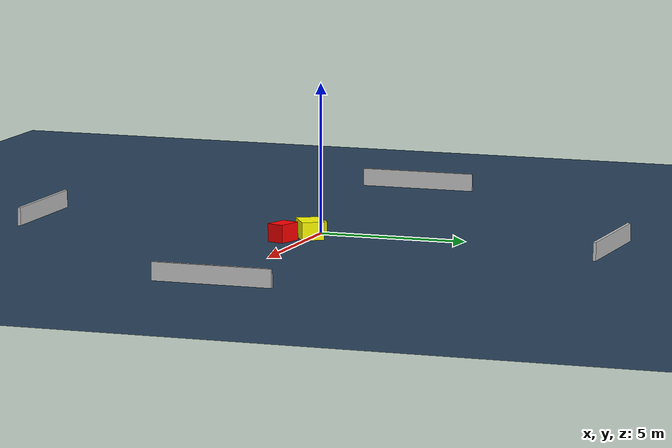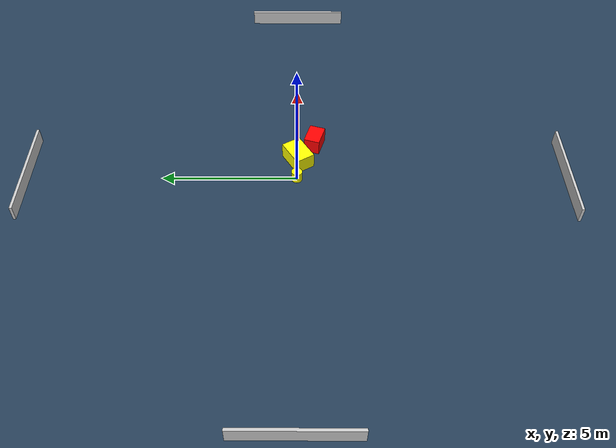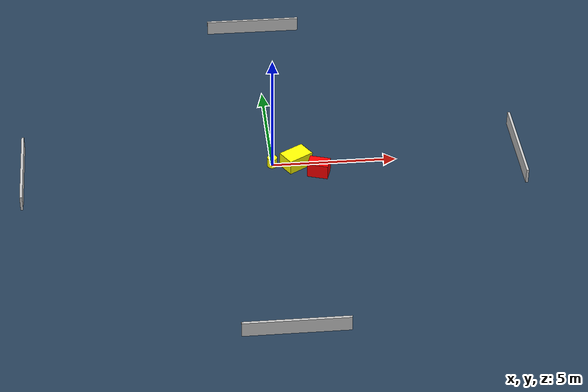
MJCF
<?xml version="1.0" ?>
<mujoco model="generated_environment">
  <option timestep="0.01" integrator="RK4" cone="elliptic"/>
  <default>
    <geom density="1"/>
  </default>
  <asset>
    <texture builtin="gradient" height="3072" name="skybox" rgb1="0.3 0.5 0.7" rgb2="0 0 0" type="skybox" width="512"/>
    <texture builtin="checker" height="300" name="groundplane" rgb1="0.2 0.3 0.4" rgb2="0.1 0.2 0.3" type="2d" width="300"/>
    <material name="groundplane" reflectance="0.2" texrepeat="5 5" texture="groundplane"/>
  </asset>
  <worldbody>
    <light dir="0 0 -1" directional="true" pos="0 0 1.5"/>
    <geom condim="3" friction="0.5 0.005 0.001" material="groundplane" name="floor" pos="0 0 0" size="0 0 0.05" type="plane"/>
    <body name="walls">
      <geom name="wall_1" condim="4" pos="-10.0 0.0 0.3" rgba="0.800000011920929 0.800000011920929 0.800000011920929 1.0" size="0.05 2.0 0.3" type="box"/>
      <geom name="wall_2" condim="4" pos="10.0 0.0 0.3" rgba="0.800000011920929 0.800000011920929 0.800000011920929 1.0" size="0.05 2.0 0.3" type="box"/>
      <geom name="wall_3" condim="4" pos="0.0 -10.0 0.3" rgba="0.800000011920929 0.800000011920929 0.800000011920929 1.0" size="2.0 0.05 0.3" type="box"/>
      <geom name="wall_4" condim="4" pos="0.0 10.0 0.3" rgba="0.800000011920929 0.800000011920929 0.800000011920929 1.0" size="2.0 0.05 0.3" type="box"/>
    </body>
    <body name="robot">
      <joint name="joint_x" type="slide" pos="0 0 0" axis="1 0 0"/>
      <joint name="joint_y" type="slide" pos="0 0 0" axis="0 1 0"/>
      <geom name="robot" type="cylinder" pos="0.0 0.0 0.2" size="0.2 0.2 0.0" mass="5.0" friction="1.0 0.005 0.0001" condim="4" rgba="1.0 1.0 0.0 1.0"/>
    </body>
    <body name="obstacle_1_movable">
      <geom name="obstacle_1_movable" condim="4" pos="0.9538639703252529 -0.041992026271851265 0.3" euler="0 0 301.04273373888395" friction="0.0 0.005 0.001" rgba="1.0 1.0 0.0 1.0" size="0.3733551371637627 0.5423538964583493 0.3" type="box" mass="0.1"/>
      <joint type="free"/>
    </body>
    <body name="obstacle_2_static">
      <geom name="obstacle_2_static" condim="4" pos="1.8104203117752895 -0.6753765332594736 0.3" euler="0 0 252.36865036294324" friction="0.0 0.005 0.001" rgba="1.0 0.0 0.0 1.0" size="0.2977586775404138 0.41633197683046963 0.3" type="box"/>
    </body>
  </worldbody>
  <actuator>
    <motor name="actuator_x" joint="joint_x" gear="1" ctrlrange="-1 1"/>
    <motor name="actuator_y" joint="joint_y" gear="1" ctrlrange="-1 1"/>
  </actuator>
</mujoco>
